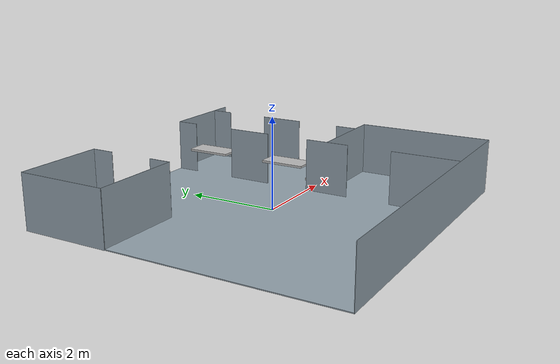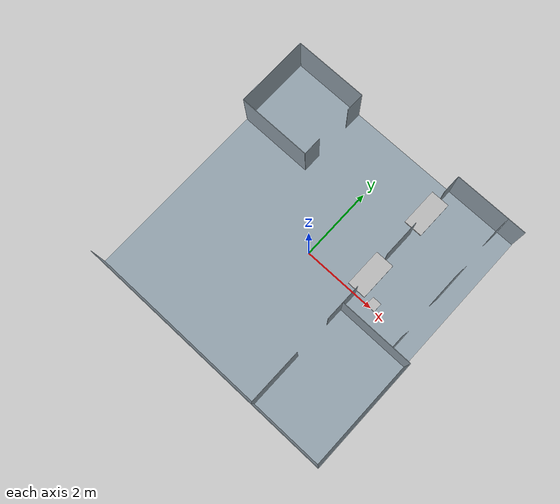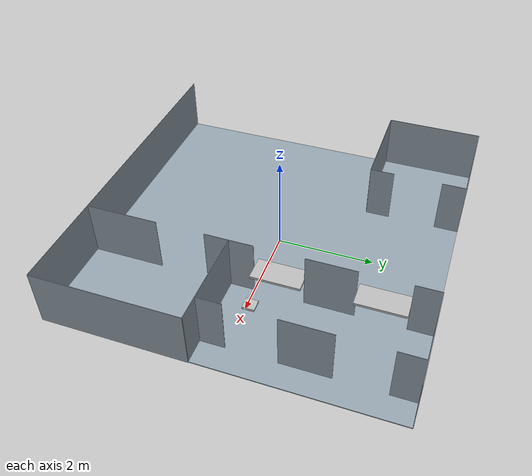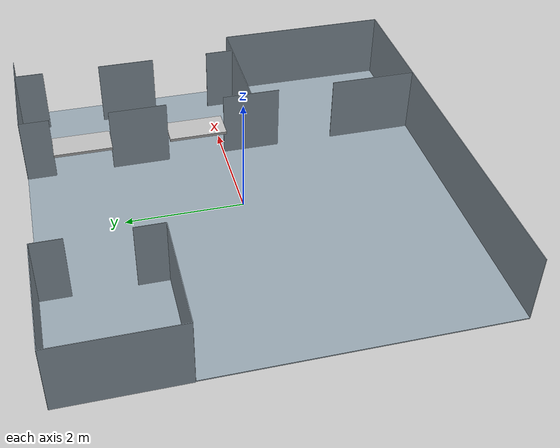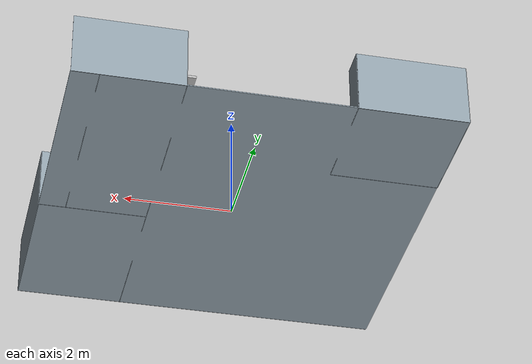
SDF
<?xml version="1.0"?>
<sdf version='1.6'>
<model name="environment_floor_1">

  <material name="white">
    <color rgba="0.9 0.9 0.9 1.0"/>
  </material>

  <link name="floor">
    <pose>0 0 0 0 0 0 </pose>
    <inertial>
      <mass>1</mass>
        <inertia>
          <ixx>1</ixx>
          <ixy>0</ixy>
          <ixz>0</ixz>
          <iyy>1</iyy>
          <iyz>0</iyz>
          <izz>1</izz>
        </inertia>
    </inertial>

    <visual name='tabletop'>
      <pose>0 0 0.015 0 0 0</pose>
      <geometry>
        <box>
          <size>7 7 0.02</size>
        </box>
      </geometry>
      <material>
        <diffuse>0.57 0.63 0.67 1.0</diffuse>
      </material>
    </visual>

    <visual name='wall_2'>
      <pose>-2.5 1.5 0.6 0 0 0</pose>
      <geometry>
        <box>
          <size>1.99 0.01 1.2</size>
        </box>
      </geometry>
      <material>
        <diffuse>0.57 0.63 0.67 1.0</diffuse>
      </material>
    </visual>

    <visual name='wall_3'>
      <pose>-1.5 1.75 0.6 0 0 1.57079632679</pose>
      <geometry>
        <box>
          <size>0.5 0.01 1.2</size>
        </box>
      </geometry>
      <material>
        <diffuse>0.57 0.63 0.67 1.0</diffuse>
      </material>
    </visual>

    <visual name='wall_4'>
      <pose>-1.5 3.25 0.6 0 0 1.57079632679</pose>
      <geometry>
        <box>
          <size>0.5 0.01 1.2</size>
        </box>
      </geometry>
      <material>
        <diffuse>0.57 0.63 0.67 1.0</diffuse>
      </material>
    </visual>

    <visual name='wall_5'>
      <pose>1.5 -2.7475 0.6 0 0 1.57079632679</pose>
      <geometry>
        <box>
          <size>1.49 0.01 1.2</size>
        </box>
      </geometry>
      <material>
        <diffuse>0.57 0.63 0.67 1.0</diffuse>
      </material>
    </visual>

    <visual name='wall_6'>
      <pose>2.5 -0.5 0.6 0 0 0</pose>
      <geometry>
        <box>
          <size>1.99 0.01 1.2</size>
        </box>
      </geometry>
      <material>
        <diffuse>0.57 0.63 0.67 1.0</diffuse>
      </material>
    </visual>

    <visual name='wall_7'>
      <pose>1.5 -0.5 0.6 0 0 1.57079632679</pose>
      <geometry>
        <box>
          <size>1 0.01 1.2</size>
        </box>
      </geometry>
      <material>
        <diffuse>0.57 0.63 0.67 1.0</diffuse>
      </material>
    </visual>

    <visual name='wall_8'>
      <pose>1.5 1.5 0.6 0 0 1.57079632679</pose>
      <geometry>
        <box>
          <size>1 0.01 1.2</size>
        </box>
      </geometry>
      <material>
        <diffuse>0.57 0.63 0.67 1.0</diffuse>
      </material>
    </visual>

    <visual name='wall_9'>
      <pose>1.5 3.25 0.6 0 0 1.57079632679</pose>
      <geometry>
        <box>
          <size>0.5 0.01 1.2</size>
        </box>
      </geometry>
      <material>
        <diffuse>0.57 0.63 0.67 1.0</diffuse>
      </material>
    </visual>

    <visual name='wall_10'>
      <pose>-3.5 2.5 0.6 0 0 1.57079632679</pose>
      <geometry>
        <box>
          <size>2 0.01 1.2</size>
        </box>
      </geometry>
      <material>
        <diffuse>0.57 0.63 0.67 1.0</diffuse>
      </material>
    </visual>

    <visual name='wall_11'>
      <pose>-2.5 3.5 0.6 0 0 0</pose>
      <geometry>
        <box>
          <size>1.99 0.01 1.2</size>
        </box>
      </geometry>
      <material>
        <diffuse>0.57 0.63 0.67 1.0</diffuse>
      </material>
    </visual>

    <visual name='wall_12'>
      <pose>2.5 3.5 0.6 0 0 0</pose>
      <geometry>
        <box>
          <size>1.99 0.01 1.2</size>
        </box>
      </geometry>
      <material>
        <diffuse>0.57 0.63 0.67 1.0</diffuse>
      </material>
    </visual>

    <visual name='wall_13'>
      <pose>3.5 -2.0 0.6 0 0 1.57079632679</pose>
      <geometry>
        <box>
          <size>3 0.01 1.2</size>
        </box>
      </geometry>
      <material>
        <diffuse>0.57 0.63 0.67 1.0</diffuse>
      </material>
    </visual>

    <visual name='wall_14'>
      <pose>0 -3.5 0.6 0 0 0</pose>
      <geometry>
        <box>
          <size>6.99 0.01 1.2</size>
        </box>
      </geometry>
      <material>
        <diffuse>0.57 0.63 0.67 1.0</diffuse>
      </material>
    </visual>

    <visual name='wall_15'>
      <pose>3.0 -0.25 0.6 0 0 1.57079632679</pose>
      <geometry>
        <box>
          <size>0.5 0.01 1.2</size>
        </box>
      </geometry>
      <material>
        <diffuse>0.57 0.63 0.67 1.0</diffuse>
      </material>
    </visual>

    <visual name='wall_16'>
      <pose>3.0 1.5 0.6 0 0 1.57079632679</pose>
      <geometry>
        <box>
          <size>1.0 0.01 1.2</size>
        </box>
      </geometry>
      <material>
        <diffuse>0.57 0.63 0.67 1.0</diffuse>
      </material>
    </visual>

    <visual name='wall_17'>
      <pose>3.0 3.25 0.6 0 0 1.57079632679</pose>
      <geometry>
        <box>
          <size>0.5 0.01 1.2</size>
        </box>
      </geometry>
      <material>
        <diffuse>0.57 0.63 0.67 1.0</diffuse>
      </material>
    </visual>

<!-- Exterior -->

<!-- Outer walls -->

    <visual name='kuka_table_1'>
      <pose>1.5 0.5 0.615 0 0 0</pose>
      <geometry>
        <box>
          <size>0.5 1 0.05</size>
        </box>
      </geometry>
      <material name="white"/>
    </visual>

    <visual name='kuka_table_2'>
      <pose>1.5 2.5 0.615 0 0 0</pose>
      <geometry>
        <box>
          <size>0.5 1 0.05</size>
        </box>
      </geometry>
      <material name="white"/>

    </visual>

    <visual name='kuka_platform_1'>
      <pose>2.0 0.1 0.15 0 0 0</pose>
      <geometry>
        <box>
          <size>0.25 0.25 0.05</size>
        </box>
      </geometry>
      <material name="white"/>

    </visual>

    <collision name='tabletop'>
      <pose>0 0 -0.01 0 0 0</pose>
      <geometry>
        <box>
          <size>5 7 0.02</size>
        </box>
      </geometry>
    </collision>

   </link>
</model>
</sdf>
